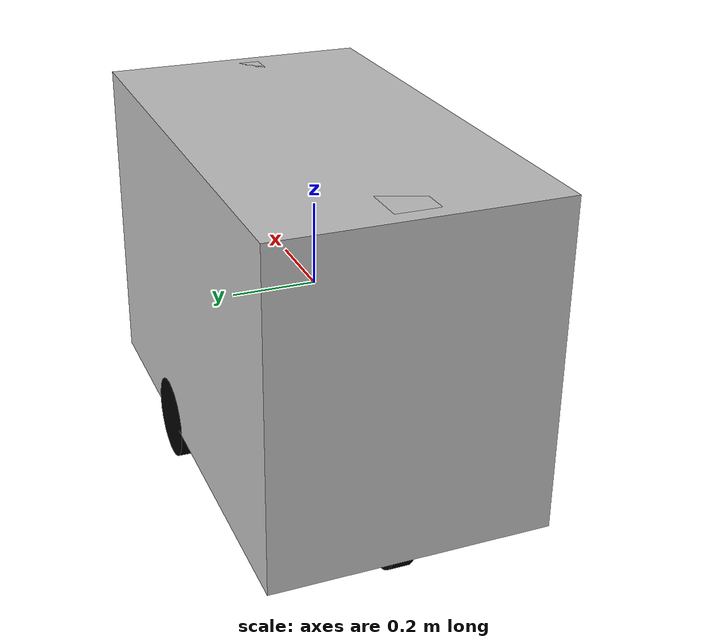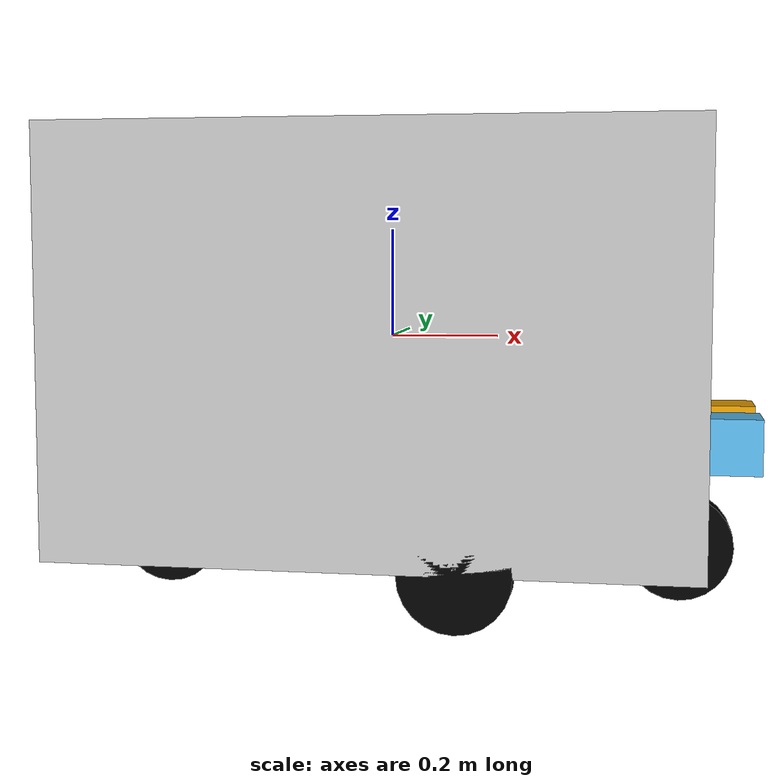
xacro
<?xml version="1.0" ?>
<robot name="hermes">
  <link name="base_link">
    <inertial>
      <mass value="1.0" />
      <inertia ixx="0.015" iyy="0.0375" izz="0.0375" ixy="0" ixz="0" iyz="0" />
    </inertial>
    <visual>
      <geometry>
        <box size="1.16195 0.651 0.77596" />
      </geometry>
      <material name="silver">
        <color rgba="0.75 0.75 0.75 1" />
      </material>
    </visual>
    <collision>
      <geometry>
        <box size="0.6 0.3 0.3" />
      </geometry>
    </collision>
  </link>
  <link name="back_caster">
    <inertial>
      <mass value="0.1" />
      <inertia ixx="0.00083" iyy="0.00083" izz="0.000167" ixy="0" ixz="0" iyz="0" />
    </inertial>
    <visual>
      <geometry>
        <box size="0.1 0.1 0.77596" />
      </geometry>
      <material name="silver" />
    </visual>
    <collision>
      <geometry>
        <box size="0.1 0.1 0.77596" />
      </geometry>
    </collision>
  </link>
  <joint name="back_caster_joint" type="continuous">
    <axis xyz="0 0 1" />
    <parent link="base_link" />
    <child link="back_caster" />
    <origin rpy="0 0 0" xyz="-0.491695 0 0" />
  </joint>
  <link name="back_wheel">
    <inertial>
      <mass value="0.1" />
      <inertia ixx="5.1458e-5" iyy="5.1458e-5" izz="6.125e-5" ixy="0" ixz="0" iyz="0" />
    </inertial>
    <visual>
      <geometry>
        <cylinder length="0.05" radius="0.1" />
      </geometry>
      <material name="black" />
    </visual>
    <collision>
      <geometry>
        <cylinder length="0.05" radius="0.1" />
      </geometry>
    </collision>

  </link>
  <joint name="back_wheel_joint" type="continuous">
    <axis xyz="0 0 1" />
    <parent link="back_caster" />
    <child link="back_wheel" />
    <origin rpy="-1.5708 0 0" xyz="0.05 0 -.38798" />
  </joint>
  <link name="front_caster">
    <inertial>
      <mass value="0.1" />
      <inertia ixx="0.00083" iyy="0.00083" izz="0.000167" ixy="0" ixz="0" iyz="0" />
    </inertial>
    <visual>
      <geometry>
        <box size="0.1 0.1 0.77596" />
      </geometry>
      <material name="silver" />
    </visual>
    <collision>
      <geometry>
        <box size="0.1 0.1 0.77596" />
      </geometry>
    </collision>
  </link>
  <joint name="front_caster_joint" type="continuous">
    <axis xyz="0 0 1" />
    <parent link="base_link" />
    <child link="front_caster" />
    <origin rpy="0 0 0" xyz="0.491695 0 0" />
  </joint>
  <link name="front_wheel">
    <inertial>
      <mass value="0.1" />
      <inertia ixx="5.1458e-5" iyy="5.1458e-5" izz="6.125e-5" ixy="0" ixz="0" iyz="0" />
    </inertial>
    <visual>
      <geometry>
        <cylinder length="0.05" radius="0.1" />
      </geometry>
      <material name="black" />
    </visual>
    <collision>
      <geometry>
        <cylinder length="0.05" radius="0.1" />
      </geometry>
    </collision>

  </link>
  <joint name="front_wheel_joint" type="continuous">
    <axis xyz="0 0 1" />
    <parent link="front_caster" />
    <child link="front_wheel" />
    <origin rpy="-1.5708 0 0" xyz="0.05 0 -.38798" />
  </joint>
  <link name="right_wheel">
    <inertial>
      <mass value="0.1" />
      <inertia ixx="5.1458e-5" iyy="5.1458e-5" izz="6.125e-5" ixy="0" ixz="0" iyz="0" />
    </inertial>
    <visual>
      <geometry>
        <cylinder length="0.05" radius="0.1" />
      </geometry>
      <material name="black">
        <color rgba="0 0 0 1" />
      </material>
    </visual>
    <collision>
      <geometry>
        <cylinder length="0.05" radius="0.1" />
      </geometry>
    </collision>
  </link>
  <joint name="right_wheel_joint" type="continuous">
    <axis xyz="0 0 1" />
    <parent link="base_link" />
    <child link="right_wheel" />
    <origin rpy="-1.5708 0 0" xyz="0.159795 -.3005 -.38798" />
  </joint>
  <link name="left_wheel">
    <inertial>
      <mass value="0.1" />
      <inertia ixx="5.1458e-5" iyy="5.1458e-5" izz="6.125e-5" ixy="0" ixz="0" iyz="0" />
    </inertial>
    <visual>
      <geometry>
        <cylinder length="0.05" radius="0.1" />
      </geometry>
      <material name="black" />
    </visual>
    <collision>
      <geometry>
        <cylinder length="0.05" radius="0.1" />
      </geometry>
    </collision>
  </link>
  <joint name="left_wheel_joint" type="continuous">
    <axis xyz="0 0 1" />
    <parent link="base_link" />
    <child link="left_wheel" />
    <origin rpy="-1.5708 0 0" xyz="0.159795 0.3005 -.38978" />
  </joint>
  <link name = "camera_center"/>
  <joint name = "camera_center_base_link" type = "fixed">
    <origin xyz="0.630975 0.0 -0.1807467" rpy="0 0 0" />
    <parent link="base_link" />
    <child link="camera_center" />
  </joint>
  <link name="camera_link_left">
    <collision>
      <origin xyz="0 0 0" rpy="0 0 0" />
      <geometry>
        <box size="0.1 0.1 0.1" />
      </geometry>
    </collision>
    <visual>
      <origin xyz="0 0 0" rpy="0 0 0" />
      <geometry>
        <box size="0.1 0.1 0.1" />
      </geometry>
    </visual>
    <inertial>
      <mass value="1e-5" />
      <origin xyz="0 0 0" rpy="0 0 0" />
      <inertia ixx="1e-6" ixy="0" ixz="0" iyy="1e-6" iyz="0" izz="1e-6" />
    </inertial>
  </link>
  <joint name="camera_joint_left" type="fixed">
    <origin xyz="0.0 0.1 0.0" rpy="0 0 0" />
    <parent link="camera_center" />
    <child link="camera_link_left" />
  </joint>
    <link name="camera_link_right">
    <collision>
      <origin xyz="0 0 0" rpy="0 0 0" />
      <geometry>
        <box size="0.1 0.1 0.1" />
      </geometry>
    </collision>
    <visual>
      <origin xyz="0 0 0" rpy="0 0 0" />
      <geometry>
        <box size="0.1 0.1 0.1" />
      </geometry>
    </visual>
    <inertial>
      <mass value="1e-5" />
      <origin xyz="0 0 0" rpy="0 0 0" />
      <inertia ixx="1e-6" ixy="0" ixz="0" iyy="1e-6" iyz="0" izz="1e-6" />
    </inertial>
  </link>
  <joint name="camera_joint_right" type="fixed">
    <origin xyz="0.0 -0.1 0.0" rpy="0 0 0" />
    <parent link="camera_center" />
    <child link="camera_link_right" />
  </joint>
  <link name="left_camera_optical_frame"/>
  <joint name="left_camera_optical_frame_joint" type="fixed">
    <origin xyz="0 0 0" rpy="0.0 0.0 0.0" />
    <parent link="camera_link_left" />
    <child link="left_camera_optical_frame"/>
  </joint>
  <gazebo>
    <plugin name="differential_drive_controller" filename="libgazebo_ros_diff_drive.so">
      <leftJoint>left_wheel_joint</leftJoint>
      <odometryTopic>odom</odometryTopic>
      <odometryFrame>odom</odometryFrame>
      <publishWheelTF>false</publishWheelTF>
      <publishOdomTF>true</publishOdomTF>
      <wheelTorque>5</wheelTorque>
      <wheelAcceleration>0</wheelAcceleration>
      <updateRate>100</updateRate>
      <odometrySource>world</odometrySource> <!-- 'encoder' instead of 'world' is also possible -->
      <publishTf>1</publishTf>
      <rosDebugLevel>na</rosDebugLevel>
      <rightJoint>right_wheel_joint</rightJoint>
      <robotBaseFrame>base_link</robotBaseFrame>
      <wheelSeparation>0.25</wheelSeparation>
      <wheelDiameter>0.07</wheelDiameter>
      <publishWheelJointState>true</publishWheelJointState>
      <commandTopic>cmd_vel</commandTopic>
      <robotBaseFrame>base_link</robotBaseFrame>
    </plugin>
  </gazebo>

  <!--stereo camera config-->

  <gazebo reference="camera_center">
    <sensor type="multicamera" name="stereo_camera">
      <update_rate>30.0</update_rate>
      <camera name="left">
        <horizontal_fov>1.3962634</horizontal_fov>
        <image>
          <width>800</width>
          <height>800</height>
          <format>R8G8B8</format>
        </image>
        <clip>
          <near>0.02</near>
          <far>300</far>
        </clip>
        <noise>
          <type>gaussian</type>
          <mean>0.0</mean>
          <stddev>0.007</stddev>
        </noise>
      </camera>
      <camera name="right">
        <pose>0 -0.07 0 0 0 0</pose>
        <horizontal_fov>1.3962634</horizontal_fov>
        <image>
          <width>800</width>
          <height>800</height>
          <format>R8G8B8</format>
        </image>
        <clip>
          <near>0.02</near>
          <far>300</far>
        </clip>
        <noise>
          <type>gaussian</type>
          <mean>0.0</mean>
          <stddev>0.007</stddev>
        </noise>
      </camera>
      <plugin name="stereo_camera_controller" filename="libgazebo_ros_multicamera.so">
        <alwaysOn>true</alwaysOn>
        <updateRate>0.0</updateRate>
        <cameraName>stereo_camera</cameraName>
        <imageTopicName>image_raw</imageTopicName>
        <cameraInfoTopicName>camera_info</cameraInfoTopicName>
        <frameName>left_camera_optical_frame</frameName>
        <hackBaseline>0.07</hackBaseline>
        <distortionK1>0.0</distortionK1>
        <distortionK2>0.0</distortionK2>
        <distortionK3>0.0</distortionK3>
        <distortionT1>0.0</distortionT1>
        <distortionT2>0.0</distortionT2>
      </plugin>
    </sensor>
  </gazebo>
</robot>
